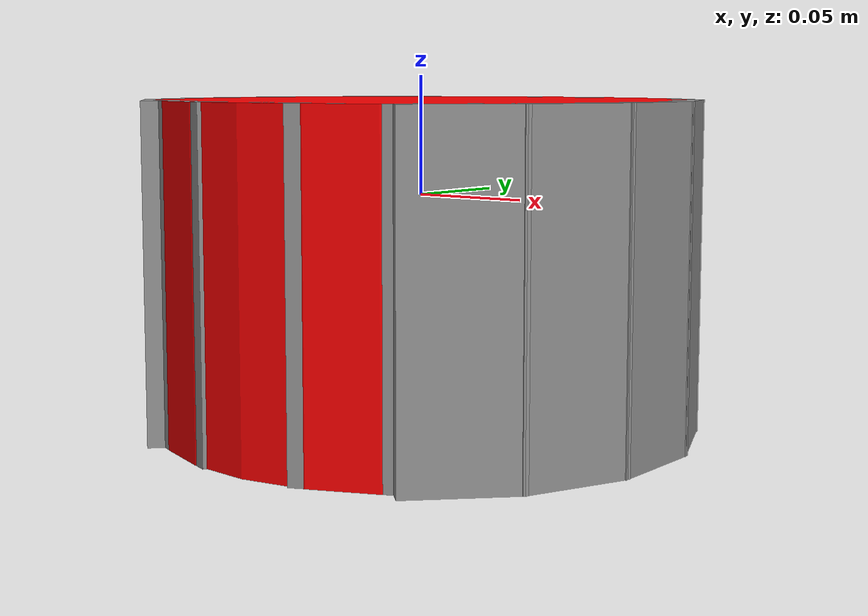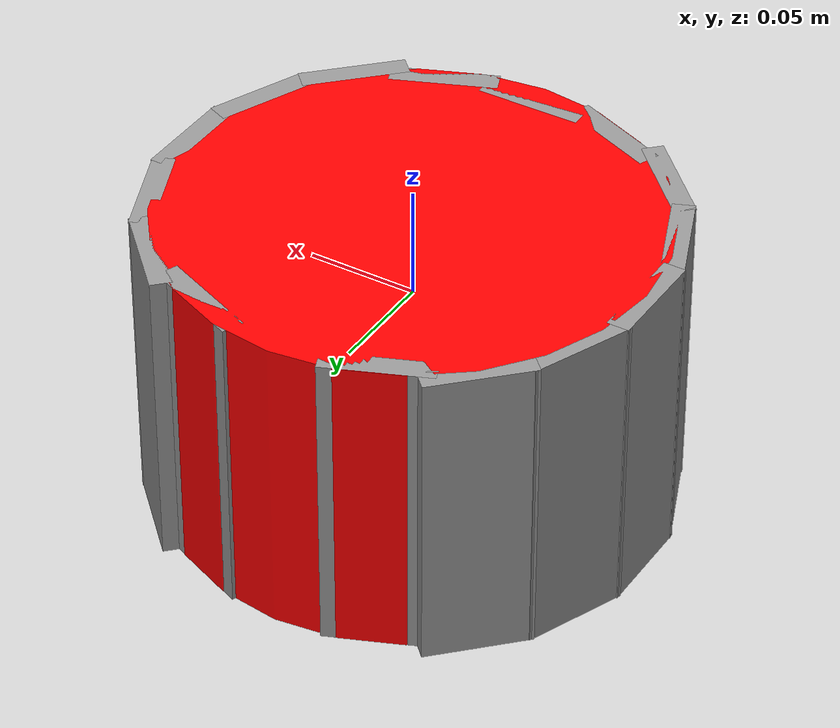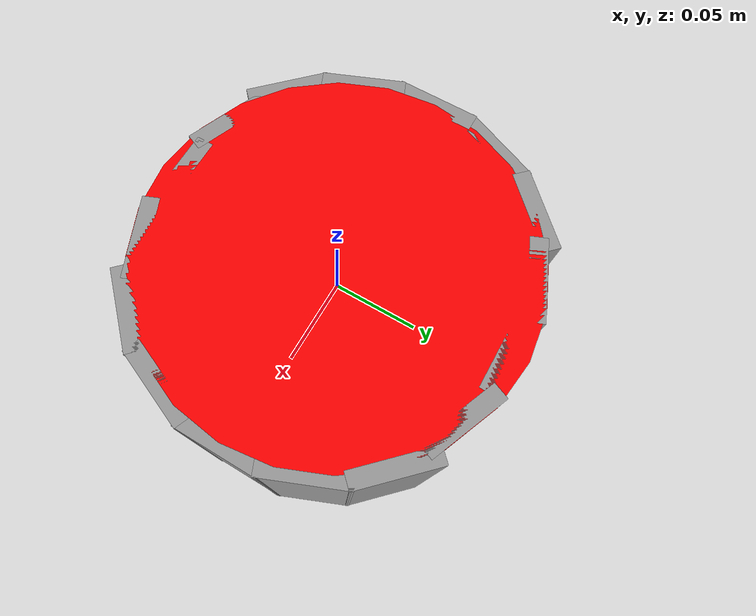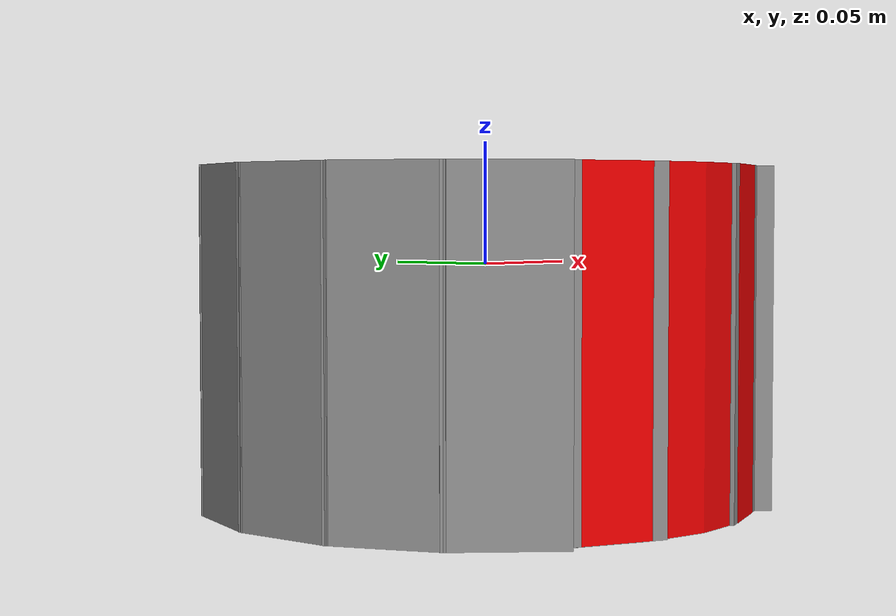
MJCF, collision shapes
<mujoco model="Pot">

  <default>
    <default class="visual">
      <geom group="2" type="mesh" contype="0" conaffinity="0"/>
    </default>
    <default class="collision">
      <geom group="2"/>
    </default>
  </default>

  <asset>
    <texture type="2d" name="texture" file="texture.png"/>
    <material name="Material.002" texture="texture" specular="0.5" shininess="0.25"/>
    <mesh file="Pot.obj"/>

  </asset>

  <worldbody>
    <body name="Pot">
      <geom material="Material.002" mesh="Pot" class="visual"/>

      <!-- the gap= propertie makes it inactive to collision but still report contacts -->
      <geom name="In_Pot" type="cylinder" size="0.11 0.07" pos="0 0 -0.03" contype="1" conaffinity="1" group="3"
          gap="0.55" rgba="1 0 0 0.5"
      />

      <geom type="cylinder" pos="0 0 -0.098" size="0.105 0.003" />
          <!-- solref="0 0" solimp="0 0 0"
          margin="0" friction="0 0 0"  -->
      <body name="hollow_cylinder" pos="0 0 -0.03">
        <geom type="box" size="0.0050 0.024 0.07" pos="0.1100 0.0000 0.0000" quat="1.000000 0.000000 0.000000 0.000000" rgba="0.6 0.6 0.6 1" contype="1" conaffinity="1"/>
        <geom type="box" size="0.0050 0.024 0.07" pos="0.1016 0.0421 0.0000" quat="0.980785 0.000000 0.000000 0.195090" rgba="0.6 0.6 0.6 1" contype="1" conaffinity="1"/>
        <geom type="box" size="0.0050 0.024 0.07" pos="0.0778 0.0778 0.0000" quat="0.923880 0.000000 0.000000 0.382683" rgba="0.6 0.6 0.6 1" contype="1" conaffinity="1"/>
        <geom type="box" size="0.0050 0.024 0.07" pos="0.0421 0.095 0.0000" quat="0.831470 0.000000 0.000000 0.555570" rgba="0.6 0.6 0.6 1" contype="1" conaffinity="1"/>
        <geom type="box" size="0.0050 0.024 0.07" pos="0.0000 0.0990 0.0000" quat="0.707107 0.000000 0.000000 0.707107" rgba="0.6 0.6 0.6 1" contype="1" conaffinity="1"/>
        <geom type="box" size="0.0050 0.024 0.07" pos="-0.0421 0.095 0.0000" quat="0.555570 0.000000 0.000000 0.831470" rgba="0.6 0.6 0.6 1" contype="1" conaffinity="1"/>
        <geom type="box" size="0.0050 0.024 0.07" pos="-0.0778 0.0778 0.0000" quat="0.382683 0.000000 0.000000 0.923880" rgba="0.6 0.6 0.6 1" contype="1" conaffinity="1"/>
        <geom type="box" size="0.0050 0.024 0.07" pos="-0.1016 0.0421 0.0000" quat="0.195090 0.000000 0.000000 0.980785" rgba="0.6 0.6 0.6 1" contype="1" conaffinity="1"/>
        <geom type="box" size="0.0050 0.024 0.07" pos="-0.1100 0.0000 0.0000" quat="0.000000 0.000000 0.000000 1.000000" rgba="0.6 0.6 0.6 1" contype="1" conaffinity="1"/>
        <geom type="box" size="0.0050 0.024 0.07" pos="-0.1016 -0.0421 0.0000" quat="-0.195090 0.000000 0.000000 0.980785" rgba="0.6 0.6 0.6 1" contype="1" conaffinity="1"/>
        <geom type="box" size="0.0050 0.024 0.07" pos="-0.0778 -0.0778 0.0000" quat="-0.382683 0.000000 0.000000 0.923880" rgba="0.6 0.6 0.6 1" contype="1" conaffinity="1"/>
        <geom type="box" size="0.0050 0.024 0.07" pos="-0.0421 -0.095 0.0000" quat="-0.555570 0.000000 0.000000 0.831470" rgba="0.6 0.6 0.6 1" contype="1" conaffinity="1"/>
        <geom type="box" size="0.0050 0.024 0.07" pos="-0.0000 -0.0990 0.0000" quat="-0.707107 0.000000 0.000000 0.707107" rgba="0.6 0.6 0.6 1" contype="1" conaffinity="1"/>
        <geom type="box" size="0.0050 0.024 0.07" pos="0.0421 -0.095 0.0000" quat="-0.831470 0.000000 0.000000 0.555570" rgba="0.6 0.6 0.6 1" contype="1" conaffinity="1"/>
        <geom type="box" size="0.0050 0.024 0.07" pos="0.0778 -0.0778 0.0000" quat="-0.923880 0.000000 0.000000 0.382683" rgba="0.6 0.6 0.6 1" contype="1" conaffinity="1"/>
        <geom type="box" size="0.0050 0.024 0.07" pos="0.1016 -0.0421 0.0000" quat="-0.980785 0.000000 0.000000 0.195090" rgba="0.6 0.6 0.6 1" contype="1" conaffinity="1"/>
      </body>

    </body>
  </worldbody>
</mujoco>
